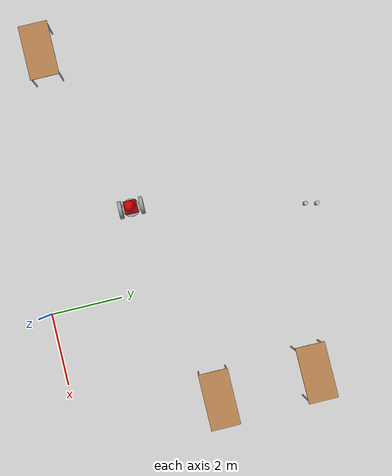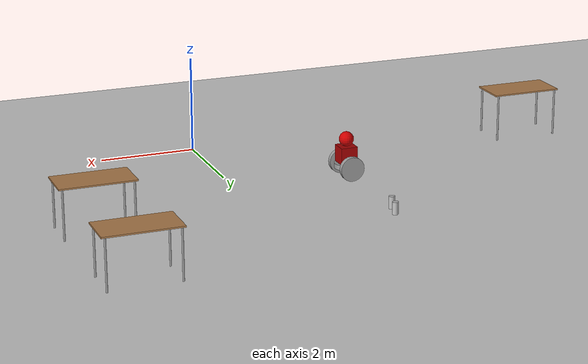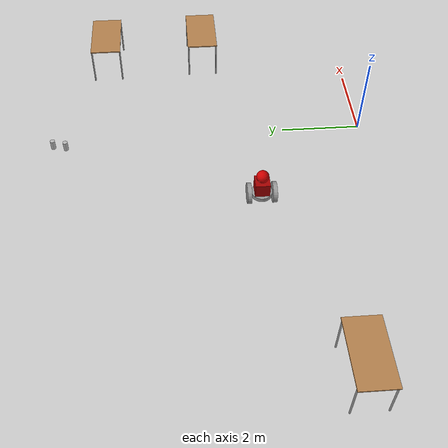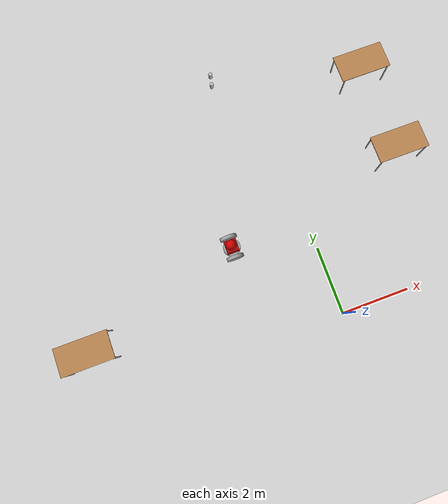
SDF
<sdf version="1.7">
 <world name="default">
  <model name="ground_plane">
   <static>1</static>
   <link name="link">
    <collision name="collision">
     <geometry><plane><normal>0 0 1</normal><size>100 100</size></plane></geometry>
     <surface>
      <contact><collide_bitmask>65535</collide_bitmask></contact>
      <friction><ode><mu>100</mu><mu2>50</mu2></ode></friction>
     </surface>
    </collision>
    <visual name="visual">
     <cast_shadows>0</cast_shadows>
     <geometry><plane><normal>0 0 1</normal><size>100 100</size></plane></geometry>
     <material>
      <script><uri>file://media/materials/scripts/gazebo.material</uri><name>Gazebo/Grey</name></script>
     </material>
    </visual>
   </link>
  </model>
  <model name="table_clone_0">
   <static>1</static>
   <link name="link">
    <collision name="surface">
     <pose>0 0 1 0 -0 0</pose>
     <geometry><box><size>1.5 0.8 0.03</size></box></geometry>
     <surface><friction><ode><mu>0.6</mu><mu2>0.6</mu2></ode></friction></surface>
    </collision>
    <visual name="visual1">
     <pose>0 0 1 0 -0 0</pose>
     <geometry><box><size>1.5 0.8 0.03</size></box></geometry>
     <material>
      <script><uri>file://media/materials/scripts/gazebo.material</uri><name>Gazebo/Wood</name></script>
     </material>
    </visual>
    <collision name="front_left_leg">
     <pose>0.68 0.38 0.5 0 -0 0</pose>
     <geometry><cylinder><radius>0.02</radius><length>1</length></cylinder></geometry>
    </collision>
    <visual name="front_left_leg">
     <pose>0.68 0.38 0.5 0 -0 0</pose>
     <geometry><cylinder><radius>0.02</radius><length>1</length></cylinder></geometry>
     <material>
      <script><uri>file://media/materials/scripts/gazebo.material</uri><name>Gazebo/Grey</name></script>
     </material>
    </visual>
    <collision name="front_right_leg">
     <pose>0.68 -0.38 0.5 0 -0 0</pose>
     <geometry><cylinder><radius>0.02</radius><length>1</length></cylinder></geometry>
    </collision>
    <visual name="front_right_leg">
     <pose>0.68 -0.38 0.5 0 -0 0</pose>
     <geometry><cylinder><radius>0.02</radius><length>1</length></cylinder></geometry>
     <material>
      <script><uri>file://media/materials/scripts/gazebo.material</uri><name>Gazebo/Grey</name></script>
     </material>
    </visual>
    <collision name="back_right_leg">
     <pose>-0.68 -0.38 0.5 0 -0 0</pose>
     <geometry><cylinder><radius>0.02</radius><length>1</length></cylinder></geometry>
    </collision>
    <visual name="back_right_leg">
     <pose>-0.68 -0.38 0.5 0 -0 0</pose>
     <geometry><cylinder><radius>0.02</radius><length>1</length></cylinder></geometry>
     <material>
      <script><uri>file://media/materials/scripts/gazebo.material</uri><name>Gazebo/Grey</name></script>
     </material>
    </visual>
    <collision name="back_left_leg">
     <pose>-0.68 0.38 0.5 0 -0 0</pose>
     <geometry><cylinder><radius>0.02</radius><length>1</length></cylinder></geometry>
    </collision>
    <visual name="back_left_leg">
     <pose>-0.68 0.38 0.5 0 -0 0</pose>
     <geometry><cylinder><radius>0.02</radius><length>1</length></cylinder></geometry>
     <material>
      <script><uri>file://media/materials/scripts/gazebo.material</uri><name>Gazebo/Grey</name></script>
     </material>
    </visual>
   </link>
   <pose>3.18102 3.9539 0 0 -0 0</pose>
  </model>
  <model name="table_clone_1">
   <static>1</static>
   <link name="link">
    <collision name="surface">
     <pose>0 0 1 0 -0 0</pose>
     <geometry><box><size>1.5 0.8 0.03</size></box></geometry>
     <surface><friction><ode><mu>0.6</mu><mu2>0.6</mu2></ode></friction></surface>
    </collision>
    <visual name="visual1">
     <pose>0 0 1 0 -0 0</pose>
     <geometry><box><size>1.5 0.8 0.03</size></box></geometry>
     <material>
      <script><uri>file://media/materials/scripts/gazebo.material</uri><name>Gazebo/Wood</name></script>
     </material>
    </visual>
    <collision name="front_left_leg">
     <pose>0.68 0.38 0.5 0 -0 0</pose>
     <geometry><cylinder><radius>0.02</radius><length>1</length></cylinder></geometry>
    </collision>
    <visual name="front_left_leg">
     <pose>0.68 0.38 0.5 0 -0 0</pose>
     <geometry><cylinder><radius>0.02</radius><length>1</length></cylinder></geometry>
     <material>
      <script><uri>file://media/materials/scripts/gazebo.material</uri><name>Gazebo/Grey</name></script>
     </material>
    </visual>
    <collision name="front_right_leg">
     <pose>0.68 -0.38 0.5 0 -0 0</pose>
     <geometry><cylinder><radius>0.02</radius><length>1</length></cylinder></geometry>
    </collision>
    <visual name="front_right_leg">
     <pose>0.68 -0.38 0.5 0 -0 0</pose>
     <geometry><cylinder><radius>0.02</radius><length>1</length></cylinder></geometry>
     <material>
      <script><uri>file://media/materials/scripts/gazebo.material</uri><name>Gazebo/Grey</name></script>
     </material>
    </visual>
    <collision name="back_right_leg">
     <pose>-0.68 -0.38 0.5 0 -0 0</pose>
     <geometry><cylinder><radius>0.02</radius><length>1</length></cylinder></geometry>
    </collision>
    <visual name="back_right_leg">
     <pose>-0.68 -0.38 0.5 0 -0 0</pose>
     <geometry><cylinder><radius>0.02</radius><length>1</length></cylinder></geometry>
     <material>
      <script><uri>file://media/materials/scripts/gazebo.material</uri><name>Gazebo/Grey</name></script>
     </material>
    </visual>
    <collision name="back_left_leg">
     <pose>-0.68 0.38 0.5 0 -0 0</pose>
     <geometry><cylinder><radius>0.02</radius><length>1</length></cylinder></geometry>
    </collision>
    <visual name="back_left_leg">
     <pose>-0.68 0.38 0.5 0 -0 0</pose>
     <geometry><cylinder><radius>0.02</radius><length>1</length></cylinder></geometry>
     <material>
      <script><uri>file://media/materials/scripts/gazebo.material</uri><name>Gazebo/Grey</name></script>
     </material>
    </visual>
   </link>
   <pose>3.1061 6.61216 0 0 -0 0</pose>
  </model>
  <model name="beer_clone">
   <link name="link">
    <pose>0 0 0.115 0 -0 0</pose>
    <inertial>
     <mass>0.39</mass>
     <inertia><ixx>0.00058</ixx><ixy>0</ixy><ixz>0</ixz><iyy>0.00058</iyy><iyz>0</iyz><izz>0.00019</izz></inertia>
    </inertial>
    <collision name="collision">
     <geometry><cylinder><radius>0.055</radius><length>0.23</length></cylinder></geometry>
    </collision>
    <visual name="visual">
     <geometry><cylinder><radius>0.055</radius><length>0.23</length></cylinder></geometry>
     <material>
      <script>
       <uri>model://beer/materials/scripts</uri>
       <uri>model://beer/materials/textures</uri>
       <name>Beer/Diffuse</name>
      </script>
     </material>
    </visual>
   </link>
   <pose>-1.30072 7.39224 0.96476 2e-05 2.7e-05 -0.042712</pose>
  </model>
  <model name="beer_clone_clone">
   <link name="link">
    <pose>0 0 0.115 0 -0 0</pose>
    <inertial>
     <mass>0.39</mass>
     <inertia><ixx>0.00058</ixx><ixy>0</ixy><ixz>0</ixz><iyy>0.00058</iyy><iyz>0</iyz><izz>0.00019</izz></inertia>
    </inertial>
    <collision name="collision">
     <geometry><cylinder><radius>0.055</radius><length>0.23</length></cylinder></geometry>
    </collision>
    <visual name="visual">
     <geometry><cylinder><radius>0.055</radius><length>0.23</length></cylinder></geometry>
     <material>
      <script>
       <uri>model://beer/materials/scripts</uri>
       <uri>model://beer/materials/textures</uri>
       <name>Beer/Diffuse</name>
      </script>
     </material>
    </visual>
   </link>
   <pose>-1.23475 7.69248 0.964763 -2.2e-05 -5e-06 -0.044564</pose>
  </model>
  <model name="table_clone_clone_0">
   <static>1</static>
   <link name="link">
    <collision name="surface">
     <pose>0 0 1 0 -0 0</pose>
     <geometry><box><size>1.5 0.8 0.03</size></box></geometry>
     <surface><friction><ode><mu>0.6</mu><mu2>0.6</mu2></ode></friction></surface>
    </collision>
    <visual name="visual1">
     <pose>0 0 1 0 -0 0</pose>
     <geometry><box><size>1.5 0.8 0.03</size></box></geometry>
     <material>
      <script><uri>file://media/materials/scripts/gazebo.material</uri><name>Gazebo/Wood</name></script>
     </material>
    </visual>
    <collision name="front_left_leg">
     <pose>0.68 0.38 0.5 0 -0 0</pose>
     <geometry><cylinder><radius>0.02</radius><length>1</length></cylinder></geometry>
    </collision>
    <visual name="front_left_leg">
     <pose>0.68 0.38 0.5 0 -0 0</pose>
     <geometry><cylinder><radius>0.02</radius><length>1</length></cylinder></geometry>
     <material>
      <script><uri>file://media/materials/scripts/gazebo.material</uri><name>Gazebo/Grey</name></script>
     </material>
    </visual>
    <collision name="front_right_leg">
     <pose>0.68 -0.38 0.5 0 -0 0</pose>
     <geometry><cylinder><radius>0.02</radius><length>1</length></cylinder></geometry>
    </collision>
    <visual name="front_right_leg">
     <pose>0.68 -0.38 0.5 0 -0 0</pose>
     <geometry><cylinder><radius>0.02</radius><length>1</length></cylinder></geometry>
     <material>
      <script><uri>file://media/materials/scripts/gazebo.material</uri><name>Gazebo/Grey</name></script>
     </material>
    </visual>
    <collision name="back_right_leg">
     <pose>-0.68 -0.38 0.5 0 -0 0</pose>
     <geometry><cylinder><radius>0.02</radius><length>1</length></cylinder></geometry>
    </collision>
    <visual name="back_right_leg">
     <pose>-0.68 -0.38 0.5 0 -0 0</pose>
     <geometry><cylinder><radius>0.02</radius><length>1</length></cylinder></geometry>
     <material>
      <script><uri>file://media/materials/scripts/gazebo.material</uri><name>Gazebo/Grey</name></script>
     </material>
    </visual>
    <collision name="back_left_leg">
     <pose>-0.68 0.38 0.5 0 -0 0</pose>
     <geometry><cylinder><radius>0.02</radius><length>1</length></cylinder></geometry>
    </collision>
    <visual name="back_left_leg">
     <pose>-0.68 0.38 0.5 0 -0 0</pose>
     <geometry><cylinder><radius>0.02</radius><length>1</length></cylinder></geometry>
     <material>
      <script><uri>file://media/materials/scripts/gazebo.material</uri><name>Gazebo/Grey</name></script>
     </material>
    </visual>
   </link>
   <pose>-7.00393 1.43861 0 0 -0 0</pose>
  </model>
  <model name="TwoWheeledRobot_clone">
   <link name="link_0">
    <inertial>
     <mass>1</mass>
     <inertia><ixx>0.145833</ixx><ixy>0</ixy><ixz>0</ixz><iyy>0.145833</iyy><iyz>0</iyz><izz>0.125</izz></inertia>
    </inertial>
    <pose>0 0 0.2 0 -0 0</pose>
    <visual name="visual">
     <geometry><cylinder><radius>0.25</radius><length>0.1</length></cylinder></geometry>
     <material>
      <lighting>1</lighting>
      <script><uri>file://media/materials/scripts/gazebo.material</uri><name>Gazebo/Grey</name></script>
      <shader type="pixel"><normal_map>__default__</normal_map></shader>
      <ambient>0.333 0.341 0.325 1</ambient>
      <diffuse>0.333 0.341 0.325 1</diffuse>
      <specular>0.333 0.341 0.325 1</specular>
      <emissive>0 0 0 1</emissive>
     </material>
    </visual>
    <collision name="collision">
     <geometry><cylinder><radius>0.25</radius><length>0.1</length></cylinder></geometry>
     <surface>
      <friction>
       <ode><mu>1</mu><mu2>1</mu2><fdir1>0 0 0</fdir1><slip1>0</slip1><slip2>0</slip2></ode>
       <torsional>
        <coefficient>1</coefficient>
        <patch_radius>0</patch_radius>
        <surface_radius>0</surface_radius>
        <use_patch_radius>1</use_patch_radius>
        <ode><slip>0</slip></ode>
       </torsional>
      </friction>
      <bounce><restitution_coefficient>0</restitution_coefficient><threshold>1e+06</threshold></bounce>
      <contact>
       <collide_without_contact>0</collide_without_contact>
       <collide_without_contact_bitmask>1</collide_without_contact_bitmask>
       <collide_bitmask>1</collide_bitmask>
       <ode>
        <soft_cfm>0</soft_cfm>
        <soft_erp>0.2</soft_erp>
        <kp>1e+13</kp>
        <kd>1</kd>
        <max_vel>0.01</max_vel>
        <min_depth>0</min_depth>
       </ode>
       <bullet>
        <split_impulse>1</split_impulse>
        <split_impulse_penetration_threshold>-0.01</split_impulse_penetration_threshold>
        <soft_cfm>0</soft_cfm>
        <soft_erp>0.2</soft_erp>
        <kp>1e+13</kp>
        <kd>1</kd>
       </bullet>
      </contact>
     </surface>
    </collision>
   </link>
   <link name="link_1">
    <inertial>
     <mass>1</mass>
     <inertia><ixx>0.145833</ixx><ixy>0</ixy><ixz>0</ixz><iyy>0.145833</iyy><iyz>0</iyz><izz>0.125</izz></inertia>
    </inertial>
    <pose>0 -0.300024 0.2 1.5707 -0 0</pose>
    <visual name="visual">
     <geometry><cylinder><radius>0.25</radius><length>0.1</length></cylinder></geometry>
     <material>
      <lighting>1</lighting>
      <script><uri>file://media/materials/scripts/gazebo.material</uri><name>Gazebo/Grey</name></script>
      <shader type="pixel"><normal_map>__default__</normal_map></shader>
      <ambient>0 0 0 1</ambient>
      <diffuse>0 0 0 1</diffuse>
      <specular>0 0 0 1</specular>
      <emissive>0 0 0 1</emissive>
     </material>
    </visual>
    <collision name="collision">
     <geometry><cylinder><radius>0.25</radius><length>0.1</length></cylinder></geometry>
     <surface>
      <friction>
       <ode><mu>1</mu><mu2>1</mu2><fdir1>0 0 0</fdir1><slip1>0</slip1><slip2>0</slip2></ode>
       <torsional>
        <coefficient>1</coefficient>
        <patch_radius>0</patch_radius>
        <surface_radius>0</surface_radius>
        <use_patch_radius>1</use_patch_radius>
        <ode><slip>0</slip></ode>
       </torsional>
      </friction>
      <bounce><restitution_coefficient>0</restitution_coefficient><threshold>1e+06</threshold></bounce>
      <contact>
       <collide_without_contact>0</collide_without_contact>
       <collide_without_contact_bitmask>1</collide_without_contact_bitmask>
       <collide_bitmask>1</collide_bitmask>
       <ode>
        <soft_cfm>0</soft_cfm>
        <soft_erp>0.2</soft_erp>
        <kp>1e+13</kp>
        <kd>1</kd>
        <max_vel>0.01</max_vel>
        <min_depth>0</min_depth>
       </ode>
       <bullet>
        <split_impulse>1</split_impulse>
        <split_impulse_penetration_threshold>-0.01</split_impulse_penetration_threshold>
        <soft_cfm>0</soft_cfm>
        <soft_erp>0.2</soft_erp>
        <kp>1e+13</kp>
        <kd>1</kd>
       </bullet>
      </contact>
     </surface>
    </collision>
   </link>
   <link name="link_1_clone">
    <inertial>
     <mass>1</mass>
     <inertia><ixx>0.145833</ixx><ixy>0</ixy><ixz>0</ixz><iyy>0.145833</iyy><iyz>0</iyz><izz>0.125</izz></inertia>
    </inertial>
    <pose>0 0.300024 0.2 1.5707 -0 0</pose>
    <visual name="visual">
     <geometry><cylinder><radius>0.25</radius><length>0.1</length></cylinder></geometry>
     <material>
      <lighting>1</lighting>
      <script><uri>file://media/materials/scripts/gazebo.material</uri><name>Gazebo/Grey</name></script>
      <shader type="pixel"><normal_map>__default__</normal_map></shader>
      <ambient>0 0 0 1</ambient>
      <diffuse>0 0 0 1</diffuse>
      <specular>0 0 0 1</specular>
      <emissive>0 0 0 1</emissive>
     </material>
    </visual>
    <collision name="collision">
     <geometry><cylinder><radius>0.25</radius><length>0.1</length></cylinder></geometry>
     <surface>
      <friction>
       <ode><mu>1</mu><mu2>1</mu2><fdir1>0 0 0</fdir1><slip1>0</slip1><slip2>0</slip2></ode>
       <torsional>
        <coefficient>1</coefficient>
        <patch_radius>0</patch_radius>
        <surface_radius>0</surface_radius>
        <use_patch_radius>1</use_patch_radius>
        <ode><slip>0</slip></ode>
       </torsional>
      </friction>
      <bounce><restitution_coefficient>0</restitution_coefficient><threshold>1e+06</threshold></bounce>
      <contact>
       <collide_without_contact>0</collide_without_contact>
       <collide_without_contact_bitmask>1</collide_without_contact_bitmask>
       <collide_bitmask>1</collide_bitmask>
       <ode>
        <soft_cfm>0</soft_cfm>
        <soft_erp>0.2</soft_erp>
        <kp>1e+13</kp>
        <kd>1</kd>
        <max_vel>0.01</max_vel>
        <min_depth>0</min_depth>
       </ode>
       <bullet>
        <split_impulse>1</split_impulse>
        <split_impulse_penetration_threshold>-0.01</split_impulse_penetration_threshold>
        <soft_cfm>0</soft_cfm>
        <soft_erp>0.2</soft_erp>
        <kp>1e+13</kp>
        <kd>1</kd>
       </bullet>
      </contact>
     </surface>
    </collision>
   </link>
   <link name="link_2">
    <inertial>
     <mass>1</mass>
     <inertia>
      <ixx>0.166667</ixx>
      <ixy>0</ixy>
      <ixz>0</ixz>
      <iyy>0.166667</iyy>
      <iyz>0</iyz>
      <izz>0.166667</izz>
     </inertia>
    </inertial>
    <pose>0 0 0.43 0 -0 0</pose>
    <visual name="visual">
     <geometry><box><size>0.35 0.35 0.35</size></box></geometry>
     <material>
      <lighting>1</lighting>
      <script><uri>file://media/materials/scripts/gazebo.material</uri><name>Gazebo/Grey</name></script>
      <shader type="pixel"><normal_map>__default__</normal_map></shader>
      <ambient>0.643 0 0 1</ambient>
      <diffuse>0.643 0 0 1</diffuse>
      <specular>0.01 0.01 0.01 1</specular>
      <emissive>0 0 0 1</emissive>
     </material>
    </visual>
    <collision name="collision">
     <geometry><box><size>0.35 0.35 0.35</size></box></geometry>
     <surface>
      <friction>
       <ode><mu>1</mu><mu2>1</mu2><fdir1>0 0 0</fdir1><slip1>0</slip1><slip2>0</slip2></ode>
       <torsional>
        <coefficient>1</coefficient>
        <patch_radius>0</patch_radius>
        <surface_radius>0</surface_radius>
        <use_patch_radius>1</use_patch_radius>
        <ode><slip>0</slip></ode>
       </torsional>
      </friction>
      <bounce><restitution_coefficient>0</restitution_coefficient><threshold>1e+06</threshold></bounce>
      <contact>
       <collide_without_contact>0</collide_without_contact>
       <collide_without_contact_bitmask>1</collide_without_contact_bitmask>
       <collide_bitmask>1</collide_bitmask>
       <ode>
        <soft_cfm>0</soft_cfm>
        <soft_erp>0.2</soft_erp>
        <kp>1e+13</kp>
        <kd>1</kd>
        <max_vel>0.01</max_vel>
        <min_depth>0</min_depth>
       </ode>
       <bullet>
        <split_impulse>1</split_impulse>
        <split_impulse_penetration_threshold>-0.01</split_impulse_penetration_threshold>
        <soft_cfm>0</soft_cfm>
        <soft_erp>0.2</soft_erp>
        <kp>1e+13</kp>
        <kd>1</kd>
       </bullet>
      </contact>
     </surface>
    </collision>
   </link>
   <link name="link_3">
    <inertial>
     <mass>1</mass>
     <inertia><ixx>0.1</ixx><ixy>0</ixy><ixz>0</ixz><iyy>0.1</iyy><iyz>0</iyz><izz>0.1</izz></inertia>
    </inertial>
    <pose>0 0 0.75 0 -0 0</pose>
    <visual name="visual">
     <geometry><sphere><radius>0.15</radius></sphere></geometry>
     <material>
      <lighting>1</lighting>
      <script><uri>file://media/materials/scripts/gazebo.material</uri><name>Gazebo/Grey</name></script>
      <shader type="pixel"><normal_map>__default__</normal_map></shader>
      <ambient>0.937 0.161 0.161 1</ambient>
      <diffuse>0.8 0 0 1</diffuse>
      <specular>0.937 0.161 0.161 1</specular>
      <emissive>0 0 0 1</emissive>
     </material>
    </visual>
    <collision name="collision">
     <geometry><sphere><radius>0.15</radius></sphere></geometry>
     <surface>
      <friction>
       <ode><mu>1</mu><mu2>1</mu2><fdir1>0 0 0</fdir1><slip1>0</slip1><slip2>0</slip2></ode>
       <torsional>
        <coefficient>1</coefficient>
        <patch_radius>0</patch_radius>
        <surface_radius>0</surface_radius>
        <use_patch_radius>1</use_patch_radius>
        <ode><slip>0</slip></ode>
       </torsional>
      </friction>
      <bounce><restitution_coefficient>0</restitution_coefficient><threshold>1e+06</threshold></bounce>
      <contact>
       <collide_without_contact>0</collide_without_contact>
       <collide_without_contact_bitmask>1</collide_without_contact_bitmask>
       <collide_bitmask>1</collide_bitmask>
       <ode>
        <soft_cfm>0</soft_cfm>
        <soft_erp>0.2</soft_erp>
        <kp>1e+13</kp>
        <kd>1</kd>
        <max_vel>0.01</max_vel>
        <min_depth>0</min_depth>
       </ode>
       <bullet>
        <split_impulse>1</split_impulse>
        <split_impulse_penetration_threshold>-0.01</split_impulse_penetration_threshold>
        <soft_cfm>0</soft_cfm>
        <soft_erp>0.2</soft_erp>
        <kp>1e+13</kp>
        <kd>1</kd>
       </bullet>
      </contact>
     </surface>
    </collision>
   </link>
   <joint name="link_0_JOINT_0" type="revolute">
    <parent>link_0</parent>
    <child>link_1</child>
    <axis>
     <xyz>0 0 1</xyz>
     <limit>
      <lower>-1.79769e+308</lower>
      <upper>1.79769e+308</upper>
      <effort>-1</effort>
      <velocity>-1</velocity>
     </limit>
     <dynamics>
      <spring_reference>0</spring_reference>
      <spring_stiffness>0</spring_stiffness>
      <damping>0</damping>
     </dynamics>
    </axis>
    <physics>
     <ode><limit><cfm>0</cfm><erp>0.2</erp></limit><suspension><cfm>0</cfm><erp>0.2</erp></suspension></ode>
    </physics>
   </joint>
   <joint name="link_0_JOINT_1" type="revolute">
    <parent>link_0</parent>
    <child>link_1_clone</child>
    <axis>
     <xyz>0 0 1</xyz>
     <limit>
      <lower>-1.79769e+308</lower>
      <upper>1.79769e+308</upper>
      <effort>-1</effort>
      <velocity>-1</velocity>
     </limit>
     <dynamics>
      <spring_reference>0</spring_reference>
      <spring_stiffness>0</spring_stiffness>
      <damping>0</damping>
     </dynamics>
    </axis>
    <physics>
     <ode><limit><cfm>0</cfm><erp>0.2</erp></limit><suspension><cfm>0</cfm><erp>0.2</erp></suspension></ode>
    </physics>
   </joint>
   <joint name="link_0_JOINT_5" type="fixed">
    <parent>link_0</parent>
    <child>link_2</child>
    <physics>
     <ode><limit><cfm>0</cfm><erp>0.2</erp></limit><suspension><cfm>0</cfm><erp>0.2</erp></suspension></ode>
    </physics>
   </joint>
   <joint name="link_2_JOINT_6" type="fixed">
    <parent>link_2</parent>
    <child>link_3</child>
    <physics>
     <ode><limit><cfm>0</cfm><erp>0.2</erp></limit><suspension><cfm>0</cfm><erp>0.2</erp></suspension></ode>
    </physics>
   </joint>
   <static>0</static>
   <pose>-2.34438 2.84503 0.050003 5e-06 -0 0</pose>
  </model>
 </world>
</sdf>
